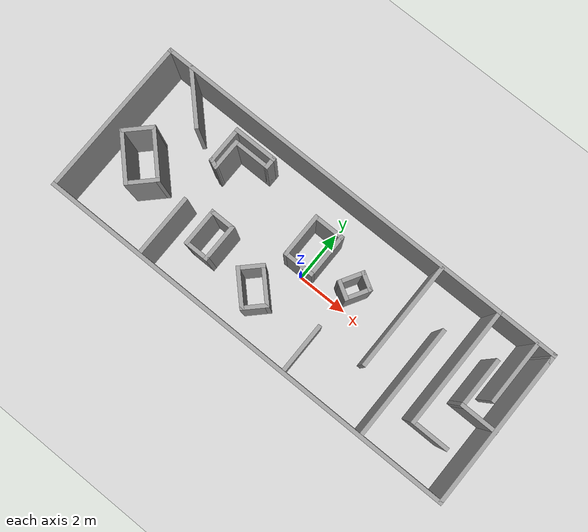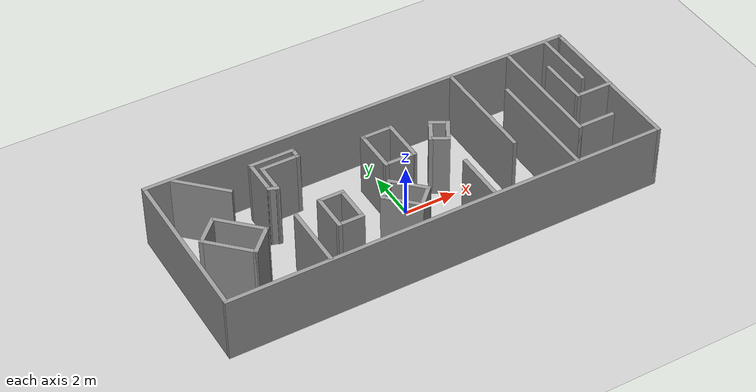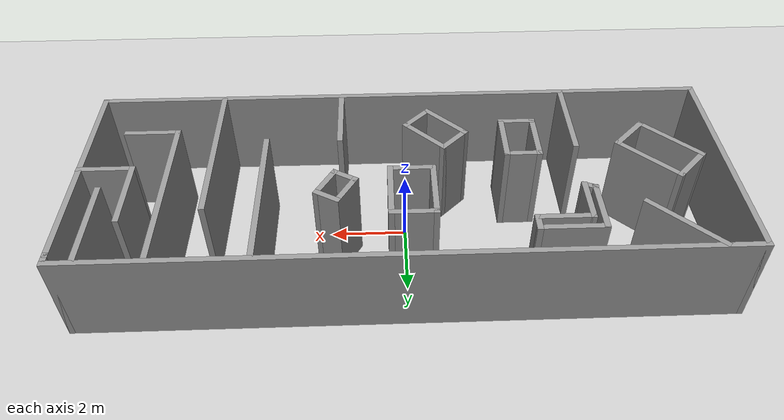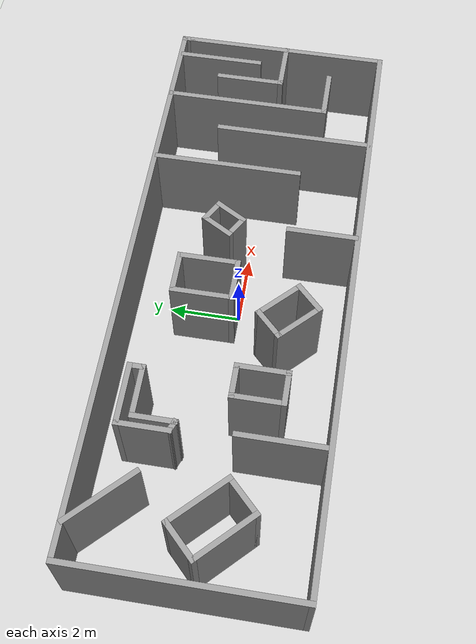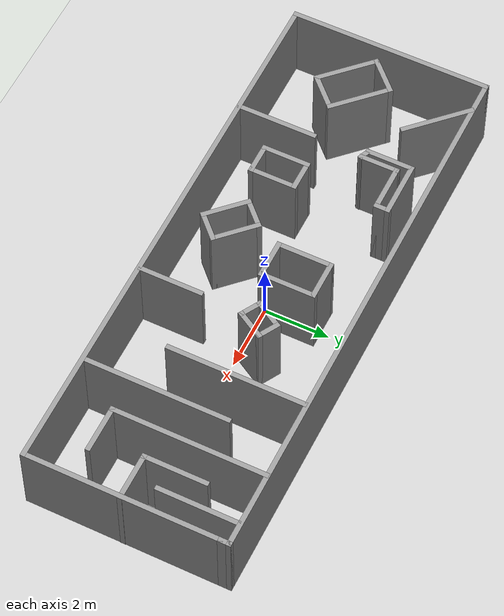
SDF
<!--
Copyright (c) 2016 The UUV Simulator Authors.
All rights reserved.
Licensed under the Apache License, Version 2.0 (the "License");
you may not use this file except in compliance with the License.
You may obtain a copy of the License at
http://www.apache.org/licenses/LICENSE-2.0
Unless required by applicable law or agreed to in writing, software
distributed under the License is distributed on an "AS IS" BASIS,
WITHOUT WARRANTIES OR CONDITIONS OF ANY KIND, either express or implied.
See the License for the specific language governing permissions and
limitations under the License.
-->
<?xml version="1.0" ?>
<sdf version="1.5">
  <world name="simple_walls">
    <include>
      <uri>model://simple_walls</uri>
    </include>
    <include>
      <uri>model://ground_plane</uri>
    </include>
    <include>
      <uri>model://sun</uri>
    </include>
  </world>
</sdf>

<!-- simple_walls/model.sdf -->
<sdf version='1.6'>
  <model name='simple_walls'>
    <link name='Wall_0'>
      <collision name='Wall_0_Collision'>
        <geometry>
          <box>
            <size>1.5 0.15 2.5</size>
          </box>
        </geometry>
        <pose frame=''>0 0 1.25 0 -0 0</pose>
      </collision>
      <visual name='Wall_0_Visual'>
        <pose frame=''>0 0 1.25 0 -0 0</pose>
        <geometry>
          <box>
            <size>1.5 0.15 2.5</size>
          </box>
        </geometry>
        <material>
          <script>
            <uri>file://media/materials/scripts/gazebo.material</uri>
            <name>Gazebo/Grey</name>
          </script>
          <ambient>1 1 1 1</ambient>
        </material>
        <meta>
          <layer>0</layer>
        </meta>
      </visual>
      <pose frame=''>-3.52936 -1.06092 0 0 -0 1.5708</pose>
    </link>
    <link name='Wall_1'>
      <collision name='Wall_1_Collision'>
        <geometry>
          <box>
            <size>1 0.15 2.5</size>
          </box>
        </geometry>
        <pose frame=''>0 0 1.25 0 -0 0</pose>
      </collision>
      <visual name='Wall_1_Visual'>
        <pose frame=''>0 0 1.25 0 -0 0</pose>
        <geometry>
          <box>
            <size>1 0.15 2.5</size>
          </box>
        </geometry>
        <material>
          <script>
            <uri>file://media/materials/scripts/gazebo.material</uri>
            <name>Gazebo/Grey</name>
          </script>
          <ambient>1 1 1 1</ambient>
        </material>
        <meta>
          <layer>0</layer>
        </meta>
      </visual>
      <pose frame=''>-3.10436 -0.385924 0 0 -0 0</pose>
    </link>
    <link name='Wall_10'>
      <collision name='Wall_10_Collision'>
        <geometry>
          <box>
            <size>16.75 0.15 2.5</size>
          </box>
        </geometry>
        <pose frame=''>0 0 1.25 0 -0 0</pose>
      </collision>
      <visual name='Wall_10_Visual'>
        <pose frame=''>0 0 1.25 0 -0 0</pose>
        <geometry>
          <box>
            <size>16.75 0.15 2.5</size>
          </box>
        </geometry>
        <material>
          <script>
            <uri>file://media/materials/scripts/gazebo.material</uri>
            <name>Gazebo/Grey</name>
          </script>
          <ambient>1 1 1 1</ambient>
        </material>
        <meta>
          <layer>0</layer>
        </meta>
      </visual>
      <pose frame=''>-0.003977 -3.05 0 0 -0 0</pose>
    </link>
    <link name='Wall_11'>
      <collision name='Wall_11_Collision'>
        <geometry>
          <box>
            <size>6 0.15 2.5</size>
          </box>
        </geometry>
        <pose frame=''>0 0 1.25 0 -0 0</pose>
      </collision>
      <visual name='Wall_11_Visual'>
        <pose frame=''>0 0 1.25 0 -0 0</pose>
        <geometry>
          <box>
            <size>6 0.15 2.5</size>
          </box>
        </geometry>
        <material>
          <script>
            <uri>file://media/materials/scripts/gazebo.material</uri>
            <name>Gazebo/Grey</name>
          </script>
          <ambient>1 1 1 1</ambient>
        </material>
        <meta>
          <layer>0</layer>
        </meta>
      </visual>
      <pose frame=''>8.29602 -0.125 0 0 -0 1.5708</pose>
    </link>
    <link name='Wall_13'>
      <collision name='Wall_13_Collision'>
        <geometry>
          <box>
            <size>1.5 0.15 2.5</size>
          </box>
        </geometry>
        <pose frame=''>0 0 1.25 0 -0 0</pose>
      </collision>
      <visual name='Wall_13_Visual'>
        <pose frame=''>0 0 1.25 0 -0 0</pose>
        <geometry>
          <box>
            <size>1.5 0.15 2.5</size>
          </box>
        </geometry>
        <material>
          <script>
            <uri>file://media/materials/scripts/gazebo.material</uri>
            <name>Gazebo/Grey</name>
          </script>
          <ambient>1 1 1 1</ambient>
        </material>
        <meta>
          <layer>0</layer>
        </meta>
      </visual>
      <pose frame=''>-0.572106 -1.18515 0 0 -0 -0.785398</pose>
    </link>
    <link name='Wall_14'>
      <collision name='Wall_14_Collision'>
        <geometry>
          <box>
            <size>1 0.15 2.5</size>
          </box>
        </geometry>
        <pose frame=''>0 0 1.25 0 -0 0</pose>
      </collision>
      <visual name='Wall_14_Visual'>
        <pose frame=''>0 0 1.25 0 -0 0</pose>
        <geometry>
          <box>
            <size>1 0.15 2.5</size>
          </box>
        </geometry>
        <material>
          <script>
            <uri>file://media/materials/scripts/gazebo.material</uri>
            <name>Gazebo/Grey</name>
          </script>
          <ambient>1 1 1 1</ambient>
        </material>
        <meta>
          <layer>0</layer>
        </meta>
      </visual>
      <pose frame=''>-0.39533 -1.96297 0 0 -0 -2.35619</pose>
    </link>
    <link name='Wall_15'>
      <collision name='Wall_15_Collision'>
        <geometry>
          <box>
            <size>1.5 0.15 2.5</size>
          </box>
        </geometry>
        <pose frame=''>0 0 1.25 0 -0 0</pose>
      </collision>
      <visual name='Wall_15_Visual'>
        <pose frame=''>0 0 1.25 0 -0 0</pose>
        <geometry>
          <box>
            <size>1.5 0.15 2.5</size>
          </box>
        </geometry>
        <material>
          <script>
            <uri>file://media/materials/scripts/gazebo.material</uri>
            <name>Gazebo/Grey</name>
          </script>
          <ambient>1 1 1 1</ambient>
        </material>
        <meta>
          <layer>0</layer>
        </meta>
      </visual>
      <pose frame=''>-1.17315 -1.78619 0 0 -0 2.35619</pose>
    </link>
    <link name='Wall_16'>
      <collision name='Wall_16_Collision'>
        <geometry>
          <box>
            <size>1 0.15 2.5</size>
          </box>
        </geometry>
        <pose frame=''>0 0 1.25 0 -0 0</pose>
      </collision>
      <visual name='Wall_16_Visual'>
        <pose frame=''>0 0 1.25 0 -0 0</pose>
        <geometry>
          <box>
            <size>1 0.15 2.5</size>
          </box>
        </geometry>
        <material>
          <script>
            <uri>file://media/materials/scripts/gazebo.material</uri>
            <name>Gazebo/Grey</name>
          </script>
          <ambient>1 1 1 1</ambient>
        </material>
        <meta>
          <layer>0</layer>
        </meta>
      </visual>
      <pose frame=''>-1.34992 -1.00837 0 0 -0 0.785398</pose>
    </link>
    <link name='Wall_18'>
      <collision name='Wall_18_Collision'>
        <geometry>
          <box>
            <size>2 0.15 2.5</size>
          </box>
        </geometry>
        <pose frame=''>0 0 1.25 0 -0 0</pose>
      </collision>
      <visual name='Wall_18_Visual'>
        <pose frame=''>0 0 1.25 0 -0 0</pose>
        <geometry>
          <box>
            <size>2 0.15 2.5</size>
          </box>
        </geometry>
        <material>
          <script>
            <uri>file://media/materials/scripts/gazebo.material</uri>
            <name>Gazebo/Grey</name>
          </script>
          <ambient>1 1 1 1</ambient>
        </material>
        <meta>
          <layer>0</layer>
        </meta>
      </visual>
      <pose frame=''>1.68817 -2.0587 0 0 -0 -1.5708</pose>
    </link>
    <link name='Wall_2'>
      <collision name='Wall_2_Collision'>
        <geometry>
          <box>
            <size>1.5 0.15 2.5</size>
          </box>
        </geometry>
        <pose frame=''>0 0 1.25 0 -0 0</pose>
      </collision>
      <visual name='Wall_2_Visual'>
        <pose frame=''>0 0 1.25 0 -0 0</pose>
        <geometry>
          <box>
            <size>1.5 0.15 2.5</size>
          </box>
        </geometry>
        <material>
          <script>
            <uri>file://media/materials/scripts/gazebo.material</uri>
            <name>Gazebo/Grey</name>
          </script>
          <ambient>1 1 1 1</ambient>
        </material>
        <meta>
          <layer>0</layer>
        </meta>
      </visual>
      <pose frame=''>-2.67936 -1.06092 0 0 -0 -1.5708</pose>
    </link>
    <link name='Wall_20'>
      <collision name='Wall_20_Collision'>
        <geometry>
          <box>
            <size>0.75 0.15 2.5</size>
          </box>
        </geometry>
        <pose frame=''>0 0 1.25 0 -0 0</pose>
      </collision>
      <visual name='Wall_20_Visual'>
        <pose frame=''>0 0 1.25 0 -0 0</pose>
        <geometry>
          <box>
            <size>0.75 0.15 2.5</size>
          </box>
        </geometry>
        <material>
          <script>
            <uri>file://media/materials/scripts/gazebo.material</uri>
            <name>Gazebo/Grey</name>
          </script>
          <ambient>1 1 1 1</ambient>
        </material>
        <meta>
          <layer>0</layer>
        </meta>
      </visual>
      <pose frame=''>1.53734 0.32843 0 0 -0 -0.523599</pose>
    </link>
    <link name='Wall_21'>
      <collision name='Wall_21_Collision'>
        <geometry>
          <box>
            <size>1 0.15 2.5</size>
          </box>
        </geometry>
        <pose frame=''>0 0 1.25 0 -0 0</pose>
      </collision>
      <visual name='Wall_21_Visual'>
        <pose frame=''>0 0 1.25 0 -0 0</pose>
        <geometry>
          <box>
            <size>1 0.15 2.5</size>
          </box>
        </geometry>
        <material>
          <script>
            <uri>file://media/materials/scripts/gazebo.material</uri>
            <name>Gazebo/Grey</name>
          </script>
          <ambient>1 1 1 1</ambient>
        </material>
        <meta>
          <layer>0</layer>
        </meta>
      </visual>
      <pose frame=''>2.00965 0.546491 0 0 -0 1.0472</pose>
    </link>
    <link name='Wall_22'>
      <collision name='Wall_22_Collision'>
        <geometry>
          <box>
            <size>0.75 0.15 2.5</size>
          </box>
        </geometry>
        <pose frame=''>0 0 1.25 0 -0 0</pose>
      </collision>
      <visual name='Wall_22_Visual'>
        <pose frame=''>0 0 1.25 0 -0 0</pose>
        <geometry>
          <box>
            <size>0.75 0.15 2.5</size>
          </box>
        </geometry>
        <material>
          <script>
            <uri>file://media/materials/scripts/gazebo.material</uri>
            <name>Gazebo/Grey</name>
          </script>
          <ambient>1 1 1 1</ambient>
        </material>
        <meta>
          <layer>0</layer>
        </meta>
      </visual>
      <pose frame=''>1.96234 1.06455 0 0 -0 2.61799</pose>
    </link>
    <link name='Wall_23'>
      <collision name='Wall_23_Collision'>
        <geometry>
          <box>
            <size>1 0.15 2.5</size>
          </box>
        </geometry>
        <pose frame=''>0 0 1.25 0 -0 0</pose>
      </collision>
      <visual name='Wall_23_Visual'>
        <pose frame=''>0 0 1.25 0 -0 0</pose>
        <geometry>
          <box>
            <size>1 0.15 2.5</size>
          </box>
        </geometry>
        <material>
          <script>
            <uri>file://media/materials/scripts/gazebo.material</uri>
            <name>Gazebo/Grey</name>
          </script>
          <ambient>1 1 1 1</ambient>
        </material>
        <meta>
          <layer>0</layer>
        </meta>
      </visual>
      <pose frame=''>1.49003 0.846491 0 0 -0 -2.0944</pose>
    </link>
    <link name='Wall_25'>
      <collision name='Wall_25_Collision'>
        <geometry>
          <box>
            <size>1.25 0.15 2.5</size>
          </box>
        </geometry>
        <pose frame=''>0 0 1.25 0 -0 0</pose>
      </collision>
      <visual name='Wall_25_Visual'>
        <pose frame=''>0 0 1.25 0 -0 0</pose>
        <geometry>
          <box>
            <size>1.25 0.15 2.5</size>
          </box>
        </geometry>
        <material>
          <script>
            <uri>file://media/materials/scripts/gazebo.material</uri>
            <name>Gazebo/Grey</name>
          </script>
          <ambient>1 1 1 1</ambient>
        </material>
        <meta>
          <layer>0</layer>
        </meta>
      </visual>
      <pose frame=''>-4.45616 1.42386 0 0 -0 1.5708</pose>
    </link>
    <link name='Wall_26'>
      <collision name='Wall_26_Collision'>
        <geometry>
          <box>
            <size>1.5 0.15 2.5</size>
          </box>
        </geometry>
        <pose frame=''>0 0 1.25 0 -0 0</pose>
      </collision>
      <visual name='Wall_26_Visual'>
        <pose frame=''>0 0 1.25 0 -0 0</pose>
        <geometry>
          <box>
            <size>1.5 0.15 2.5</size>
          </box>
        </geometry>
        <material>
          <script>
            <uri>file://media/materials/scripts/gazebo.material</uri>
            <name>Gazebo/Grey</name>
          </script>
          <ambient>1 1 1 1</ambient>
        </material>
        <meta>
          <layer>0</layer>
        </meta>
      </visual>
      <pose frame=''>-3.78116 1.97386 0 0 -0 0</pose>
    </link>
    <link name='Wall_27'>
      <collision name='Wall_27_Collision'>
        <geometry>
          <box>
            <size>0.5 0.15 2.5</size>
          </box>
        </geometry>
        <pose frame=''>0 0 1.25 0 -0 0</pose>
      </collision>
      <visual name='Wall_27_Visual'>
        <pose frame=''>0 0 1.25 0 -0 0</pose>
        <geometry>
          <box>
            <size>0.5 0.15 2.5</size>
          </box>
        </geometry>
        <material>
          <script>
            <uri>file://media/materials/scripts/gazebo.material</uri>
            <name>Gazebo/Grey</name>
          </script>
          <ambient>1 1 1 1</ambient>
        </material>
        <meta>
          <layer>0</layer>
        </meta>
      </visual>
      <pose frame=''>-3.10616 2.14886 0 0 -0 1.5708</pose>
    </link>
    <link name='Wall_28'>
      <collision name='Wall_28_Collision'>
        <geometry>
          <box>
            <size>1.75 0.15 2.5</size>
          </box>
        </geometry>
        <pose frame=''>0 0 1.25 0 -0 0</pose>
      </collision>
      <visual name='Wall_28_Visual'>
        <pose frame=''>0 0 1.25 0 -0 0</pose>
        <geometry>
          <box>
            <size>1.75 0.15 2.5</size>
          </box>
        </geometry>
        <material>
          <script>
            <uri>file://media/materials/scripts/gazebo.material</uri>
            <name>Gazebo/Grey</name>
          </script>
          <ambient>1 1 1 1</ambient>
        </material>
        <meta>
          <layer>0</layer>
        </meta>
      </visual>
      <pose frame=''>-3.90616 2.32386 0 0 -0 3.14159</pose>
    </link>
    <link name='Wall_29'>
      <collision name='Wall_29_Collision'>
        <geometry>
          <box>
            <size>1.5 0.15 2.5</size>
          </box>
        </geometry>
        <pose frame=''>0 0 1.25 0 -0 0</pose>
      </collision>
      <visual name='Wall_29_Visual'>
        <pose frame=''>0 0 1.25 0 -0 0</pose>
        <geometry>
          <box>
            <size>1.5 0.15 2.5</size>
          </box>
        </geometry>
        <material>
          <script>
            <uri>file://media/materials/scripts/gazebo.material</uri>
            <name>Gazebo/Grey</name>
          </script>
          <ambient>1 1 1 1</ambient>
        </material>
        <meta>
          <layer>0</layer>
        </meta>
      </visual>
      <pose frame=''>-4.70616 1.64886 0 0 -0 -1.5708</pose>
    </link>
    <link name='Wall_3'>
      <collision name='Wall_3_Collision'>
        <geometry>
          <box>
            <size>1 0.15 2.5</size>
          </box>
        </geometry>
        <pose frame=''>0 0 1.25 0 -0 0</pose>
      </collision>
      <visual name='Wall_3_Visual'>
        <pose frame=''>0 0 1.25 0 -0 0</pose>
        <geometry>
          <box>
            <size>1 0.15 2.5</size>
          </box>
        </geometry>
        <material>
          <script>
            <uri>file://media/materials/scripts/gazebo.material</uri>
            <name>Gazebo/Grey</name>
          </script>
          <ambient>1 1 1 1</ambient>
        </material>
        <meta>
          <layer>0</layer>
        </meta>
      </visual>
      <pose frame=''>-3.10436 -1.73592 0 0 -0 3.14159</pose>
    </link>
    <link name='Wall_30'>
      <collision name='Wall_30_Collision'>
        <geometry>
          <box>
            <size>0.419258 0.15 2.5</size>
          </box>
        </geometry>
        <pose frame=''>0 0 1.25 0 -0 0</pose>
      </collision>
      <visual name='Wall_30_Visual'>
        <pose frame=''>0 0 1.25 0 -0 0</pose>
        <geometry>
          <box>
            <size>0.419258 0.15 2.5</size>
          </box>
        </geometry>
        <material>
          <script>
            <uri>file://media/materials/scripts/gazebo.material</uri>
            <name>Gazebo/Grey</name>
          </script>
          <ambient>1 1 1 1</ambient>
        </material>
        <meta>
          <layer>0</layer>
        </meta>
      </visual>
      <pose frame=''>-4.58116 0.923857 0 0 -0 -0.380506</pose>
    </link>
    <link name='Wall_32'>
      <collision name='Wall_32_Collision'>
        <geometry>
          <box>
            <size>6.25 0.15 2.5</size>
          </box>
        </geometry>
        <pose frame=''>0 0 1.25 0 -0 0</pose>
      </collision>
      <visual name='Wall_32_Visual'>
        <pose frame=''>0 0 1.25 0 -0 0</pose>
        <geometry>
          <box>
            <size>6.25 0.15 2.5</size>
          </box>
        </geometry>
        <material>
          <script>
            <uri>file://media/materials/scripts/gazebo.material</uri>
            <name>Gazebo/Grey</name>
          </script>
          <ambient>1 1 1 1</ambient>
        </material>
        <meta>
          <layer>0</layer>
        </meta>
      </visual>
      <pose frame=''>-8.30398 -0 0 0 -0 1.5708</pose>
    </link>
    <link name='Wall_33'>
      <collision name='Wall_33_Collision'>
        <geometry>
          <box>
            <size>16.75 0.15 2.5</size>
          </box>
        </geometry>
        <pose frame=''>0 0 1.25 0 -0 0</pose>
      </collision>
      <visual name='Wall_33_Visual'>
        <pose frame=''>0 0 1.25 0 -0 0</pose>
        <geometry>
          <box>
            <size>16.75 0.15 2.5</size>
          </box>
        </geometry>
        <material>
          <script>
            <uri>file://media/materials/scripts/gazebo.material</uri>
            <name>Gazebo/Grey</name>
          </script>
          <ambient>1 1 1 1</ambient>
        </material>
        <meta>
          <layer>0</layer>
        </meta>
      </visual>
      <pose frame=''>-0.003977 3.05 0 0 -0 0</pose>
    </link>
    <link name='Wall_34'>
      <collision name='Wall_34_Collision'>
        <geometry>
          <box>
            <size>0.15 0.15 2.5</size>
          </box>
        </geometry>
        <pose frame=''>0 0 1.25 0 -0 0</pose>
      </collision>
      <visual name='Wall_34_Visual'>
        <pose frame=''>0 0 1.25 0 -0 0</pose>
        <geometry>
          <box>
            <size>0.15 0.15 2.5</size>
          </box>
        </geometry>
        <material>
          <script>
            <uri>file://media/materials/scripts/gazebo.material</uri>
            <name>Gazebo/Grey</name>
          </script>
          <ambient>1 1 1 1</ambient>
        </material>
        <meta>
          <layer>0</layer>
        </meta>
      </visual>
      <pose frame=''>8.29602 3.05 0 0 -0 0</pose>
    </link>
    <link name='Wall_35'>
      <collision name='Wall_35_Collision'>
        <geometry>
          <box>
            <size>0.4 0.15 2.5</size>
          </box>
        </geometry>
        <pose frame=''>0 0 1.25 0 -0 0</pose>
      </collision>
      <visual name='Wall_35_Visual'>
        <pose frame=''>0 0 1.25 0 -0 0</pose>
        <geometry>
          <box>
            <size>0.4 0.15 2.5</size>
          </box>
        </geometry>
        <material>
          <script>
            <uri>file://media/materials/scripts/gazebo.material</uri>
            <name>Gazebo/Grey</name>
          </script>
          <ambient>1 1 1 1</ambient>
        </material>
        <meta>
          <layer>0</layer>
        </meta>
      </visual>
      <pose frame=''>8.29602 2.925 0 0 -0 -1.5708</pose>
    </link>
    <link name='Wall_37'>
      <collision name='Wall_37_Collision'>
        <geometry>
          <box>
            <size>4.25 0.15 2.5</size>
          </box>
        </geometry>
        <pose frame=''>0 0 1.25 0 -0 0</pose>
      </collision>
      <visual name='Wall_37_Visual'>
        <pose frame=''>0 0 1.25 0 -0 0</pose>
        <geometry>
          <box>
            <size>4.25 0.15 2.5</size>
          </box>
        </geometry>
        <material>
          <script>
            <uri>file://media/materials/scripts/gazebo.material</uri>
            <name>Gazebo/Grey</name>
          </script>
          <ambient>1 1 1 1</ambient>
        </material>
        <meta>
          <layer>0</layer>
        </meta>
      </visual>
      <pose frame=''>3.63489 0.922665 0 0 -0 -1.5708</pose>
    </link>
    <link name='Wall_39'>
      <collision name='Wall_39_Collision'>
        <geometry>
          <box>
            <size>2 0.15 2.5</size>
          </box>
        </geometry>
        <pose frame=''>0 0 1.25 0 -0 0</pose>
      </collision>
      <visual name='Wall_39_Visual'>
        <pose frame=''>0 0 1.25 0 -0 0</pose>
        <geometry>
          <box>
            <size>2 0.15 2.5</size>
          </box>
        </geometry>
        <material>
          <script>
            <uri>file://media/materials/scripts/gazebo.material</uri>
            <name>Gazebo/Grey</name>
          </script>
          <ambient>1 1 1 1</ambient>
        </material>
        <meta>
          <layer>0</layer>
        </meta>
      </visual>
      <pose frame=''>-6.32674 -0.053974 0 0 -0 -0.785398</pose>
    </link>
    <link name='Wall_40'>
      <collision name='Wall_40_Collision'>
        <geometry>
          <box>
            <size>1.25 0.15 2.5</size>
          </box>
        </geometry>
        <pose frame=''>0 0 1.25 0 -0 0</pose>
      </collision>
      <visual name='Wall_40_Visual'>
        <pose frame=''>0 0 1.25 0 -0 0</pose>
        <geometry>
          <box>
            <size>1.25 0.15 2.5</size>
          </box>
        </geometry>
        <material>
          <script>
            <uri>file://media/materials/scripts/gazebo.material</uri>
            <name>Gazebo/Grey</name>
          </script>
          <ambient>1 1 1 1</ambient>
        </material>
        <meta>
          <layer>0</layer>
        </meta>
      </visual>
      <pose frame=''>-6.06158 -1.09696 0 0 -0 -2.35619</pose>
    </link>
    <link name='Wall_41'>
      <collision name='Wall_41_Collision'>
        <geometry>
          <box>
            <size>2 0.15 2.5</size>
          </box>
        </geometry>
        <pose frame=''>0 0 1.25 0 -0 0</pose>
      </collision>
      <visual name='Wall_41_Visual'>
        <pose frame=''>0 0 1.25 0 -0 0</pose>
        <geometry>
          <box>
            <size>2 0.15 2.5</size>
          </box>
        </geometry>
        <material>
          <script>
            <uri>file://media/materials/scripts/gazebo.material</uri>
            <name>Gazebo/Grey</name>
          </script>
          <ambient>1 1 1 1</ambient>
        </material>
        <meta>
          <layer>0</layer>
        </meta>
      </visual>
      <pose frame=''>-7.10456 -0.831791 0 0 -0 2.35619</pose>
    </link>
    <link name='Wall_42'>
      <collision name='Wall_42_Collision'>
        <geometry>
          <box>
            <size>1.25 0.15 2.5</size>
          </box>
        </geometry>
        <pose frame=''>0 0 1.25 0 -0 0</pose>
      </collision>
      <visual name='Wall_42_Visual'>
        <pose frame=''>0 0 1.25 0 -0 0</pose>
        <geometry>
          <box>
            <size>1.25 0.15 2.5</size>
          </box>
        </geometry>
        <material>
          <script>
            <uri>file://media/materials/scripts/gazebo.material</uri>
            <name>Gazebo/Grey</name>
          </script>
          <ambient>1 1 1 1</ambient>
        </material>
        <meta>
          <layer>0</layer>
        </meta>
      </visual>
      <pose frame=''>-7.36972 0.211191 0 0 -0 0.785398</pose>
    </link>
    <link name='Wall_44'>
      <collision name='Wall_44_Collision'>
        <geometry>
          <box>
            <size>2.25 0.15 2.5</size>
          </box>
        </geometry>
        <pose frame=''>0 0 1.25 0 -0 0</pose>
      </collision>
      <visual name='Wall_44_Visual'>
        <pose frame=''>0 0 1.25 0 -0 0</pose>
        <geometry>
          <box>
            <size>2.25 0.15 2.5</size>
          </box>
        </geometry>
        <material>
          <script>
            <uri>file://media/materials/scripts/gazebo.material</uri>
            <name>Gazebo/Grey</name>
          </script>
          <ambient>1 1 1 1</ambient>
        </material>
        <meta>
          <layer>0</layer>
        </meta>
      </visual>
      <pose frame=''>-6.60336 2.27583 0 0 -0 -0.785398</pose>
    </link>
    <link name='Wall_46'>
      <collision name='Wall_46_Collision'>
        <geometry>
          <box>
            <size>2.5 0.15 2.5</size>
          </box>
        </geometry>
        <pose frame=''>0 0 1.25 0 -0 0</pose>
      </collision>
      <visual name='Wall_46_Visual'>
        <pose frame=''>0 0 1.25 0 -0 0</pose>
        <geometry>
          <box>
            <size>2.5 0.15 2.5</size>
          </box>
        </geometry>
        <material>
          <script>
            <uri>file://media/materials/scripts/gazebo.material</uri>
            <name>Gazebo/Grey</name>
          </script>
          <ambient>1 1 1 1</ambient>
        </material>
        <meta>
          <layer>0</layer>
        </meta>
      </visual>
      <pose frame=''>-4.53221 -1.83723 0 0 -0 -1.5708</pose>
    </link>
    <link name='Wall_48'>
      <collision name='Wall_48_Collision'>
        <geometry>
          <box>
            <size>4.5 0.15 2.5</size>
          </box>
        </geometry>
        <pose frame=''>0 0 1.25 0 -0 0</pose>
      </collision>
      <visual name='Wall_48_Visual'>
        <pose frame=''>0 0 1.25 0 -0 0</pose>
        <geometry>
          <box>
            <size>4.5 0.15 2.5</size>
          </box>
        </geometry>
        <material>
          <script>
            <uri>file://media/materials/scripts/gazebo.material</uri>
            <name>Gazebo/Grey</name>
          </script>
          <ambient>1 1 1 1</ambient>
        </material>
        <meta>
          <layer>0</layer>
        </meta>
      </visual>
      <pose frame=''>4.97326 -0.814165 0 0 -0 1.5708</pose>
    </link>
    <link name='Wall_5'>
      <collision name='Wall_5_Collision'>
        <geometry>
          <box>
            <size>1.75 0.15 2.5</size>
          </box>
        </geometry>
        <pose frame=''>0 0 1.25 0 -0 0</pose>
      </collision>
      <visual name='Wall_5_Visual'>
        <pose frame=''>0 0 1.25 0 -0 0</pose>
        <geometry>
          <box>
            <size>1.75 0.15 2.5</size>
          </box>
        </geometry>
        <material>
          <script>
            <uri>file://media/materials/scripts/gazebo.material</uri>
            <name>Gazebo/Grey</name>
          </script>
          <ambient>1 1 1 1</ambient>
        </material>
        <meta>
          <layer>0</layer>
        </meta>
      </visual>
      <pose frame=''>-0.714811 0.883002 0 0 -0 1.5708</pose>
    </link>
    <link name='Wall_50'>
      <collision name='Wall_50_Collision'>
        <geometry>
          <box>
            <size>4.75 0.15 2.5</size>
          </box>
        </geometry>
        <pose frame=''>0 0 1.25 0 -0 0</pose>
      </collision>
      <visual name='Wall_50_Visual'>
        <pose frame=''>0 0 1.25 0 -0 0</pose>
        <geometry>
          <box>
            <size>4.75 0.15 2.5</size>
          </box>
        </geometry>
        <material>
          <script>
            <uri>file://media/materials/scripts/gazebo.material</uri>
            <name>Gazebo/Grey</name>
          </script>
          <ambient>1 1 1 1</ambient>
        </material>
        <meta>
          <layer>0</layer>
        </meta>
      </visual>
      <pose frame=''>6.03787 0.718291 0 0 -0 -1.5708</pose>
    </link>
    <link name='Wall_52'>
      <collision name='Wall_52_Collision'>
        <geometry>
          <box>
            <size>1.5 0.15 2.5</size>
          </box>
        </geometry>
        <pose frame=''>0 0 1.25 0 -0 0</pose>
      </collision>
      <visual name='Wall_52_Visual'>
        <pose frame=''>0 0 1.25 0 -0 0</pose>
        <geometry>
          <box>
            <size>1.5 0.15 2.5</size>
          </box>
        </geometry>
        <material>
          <script>
            <uri>file://media/materials/scripts/gazebo.material</uri>
            <name>Gazebo/Grey</name>
          </script>
          <ambient>1 1 1 1</ambient>
        </material>
        <meta>
          <layer>0</layer>
        </meta>
      </visual>
      <pose frame=''>6.71287 -1.58171 0 0 -0 0</pose>
    </link>
    <link name='Wall_54'>
      <collision name='Wall_54_Collision'>
        <geometry>
          <box>
            <size>1.5 0.15 2.5</size>
          </box>
        </geometry>
        <pose frame=''>0 0 1.25 0 -0 0</pose>
      </collision>
      <visual name='Wall_54_Visual'>
        <pose frame=''>0 0 1.25 0 -0 0</pose>
        <geometry>
          <box>
            <size>1.5 0.15 2.5</size>
          </box>
        </geometry>
        <material>
          <script>
            <uri>file://media/materials/scripts/gazebo.material</uri>
            <name>Gazebo/Grey</name>
          </script>
          <ambient>1 1 1 1</ambient>
        </material>
        <meta>
          <layer>0</layer>
        </meta>
      </visual>
      <pose frame=''>7.62898 -0.145129 0 0 -0 3.14159</pose>
    </link>
    <link name='Wall_56'>
      <collision name='Wall_56_Collision'>
        <geometry>
          <box>
            <size>2 0.15 2.5</size>
          </box>
        </geometry>
        <pose frame=''>0 0 1.25 0 -0 0</pose>
      </collision>
      <visual name='Wall_56_Visual'>
        <pose frame=''>0 0 1.25 0 -0 0</pose>
        <geometry>
          <box>
            <size>2 0.15 2.5</size>
          </box>
        </geometry>
        <material>
          <script>
            <uri>file://media/materials/scripts/gazebo.material</uri>
            <name>Gazebo/Grey</name>
          </script>
          <ambient>1 1 1 1</ambient>
        </material>
        <meta>
          <layer>0</layer>
        </meta>
      </visual>
      <pose frame=''>6.95398 0.779871 0 0 -0 1.5708</pose>
    </link>
    <link name='Wall_59'>
      <collision name='Wall_59_Collision'>
        <geometry>
          <box>
            <size>2.5 0.15 2.5</size>
          </box>
        </geometry>
        <pose frame=''>0 0 1.25 0 -0 0</pose>
      </collision>
      <visual name='Wall_59_Visual'>
        <pose frame=''>0 0 1.25 0 -0 0</pose>
        <geometry>
          <box>
            <size>2.5 0.15 2.5</size>
          </box>
        </geometry>
        <material>
          <script>
            <uri>file://media/materials/scripts/gazebo.material</uri>
            <name>Gazebo/Grey</name>
          </script>
          <ambient>1 1 1 1</ambient>
        </material>
        <meta>
          <layer>0</layer>
        </meta>
      </visual>
      <pose frame=''>7.65 1.79767 0 0 -0 -1.5708</pose>
    </link>
    <link name='Wall_6'>
      <collision name='Wall_6_Collision'>
        <geometry>
          <box>
            <size>1.25 0.15 2.5</size>
          </box>
        </geometry>
        <pose frame=''>0 0 1.25 0 -0 0</pose>
      </collision>
      <visual name='Wall_6_Visual'>
        <pose frame=''>0 0 1.25 0 -0 0</pose>
        <geometry>
          <box>
            <size>1.25 0.15 2.5</size>
          </box>
        </geometry>
        <material>
          <script>
            <uri>file://media/materials/scripts/gazebo.material</uri>
            <name>Gazebo/Grey</name>
          </script>
          <ambient>1 1 1 1</ambient>
        </material>
        <meta>
          <layer>0</layer>
        </meta>
      </visual>
      <pose frame=''>-0.164811 1.683 0 0 -0 0</pose>
    </link>
    <link name='Wall_7'>
      <collision name='Wall_7_Collision'>
        <geometry>
          <box>
            <size>1.75 0.15 2.5</size>
          </box>
        </geometry>
        <pose frame=''>0 0 1.25 0 -0 0</pose>
      </collision>
      <visual name='Wall_7_Visual'>
        <pose frame=''>0 0 1.25 0 -0 0</pose>
        <geometry>
          <box>
            <size>1.75 0.15 2.5</size>
          </box>
        </geometry>
        <material>
          <script>
            <uri>file://media/materials/scripts/gazebo.material</uri>
            <name>Gazebo/Grey</name>
          </script>
          <ambient>1 1 1 1</ambient>
        </material>
        <meta>
          <layer>0</layer>
        </meta>
      </visual>
      <pose frame=''>0.385189 0.883002 0 0 -0 -1.5708</pose>
    </link>
    <link name='Wall_8'>
      <collision name='Wall_8_Collision'>
        <geometry>
          <box>
            <size>1.25 0.15 2.5</size>
          </box>
        </geometry>
        <pose frame=''>0 0 1.25 0 -0 0</pose>
      </collision>
      <visual name='Wall_8_Visual'>
        <pose frame=''>0 0 1.25 0 -0 0</pose>
        <geometry>
          <box>
            <size>1.25 0.15 2.5</size>
          </box>
        </geometry>
        <material>
          <script>
            <uri>file://media/materials/scripts/gazebo.material</uri>
            <name>Gazebo/Grey</name>
          </script>
          <ambient>1 1 1 1</ambient>
        </material>
        <meta>
          <layer>0</layer>
        </meta>
      </visual>
      <pose frame=''>-0.164811 0.083002 0 0 -0 3.14159</pose>
    </link>
    <static>1</static>
  </model>
</sdf>
